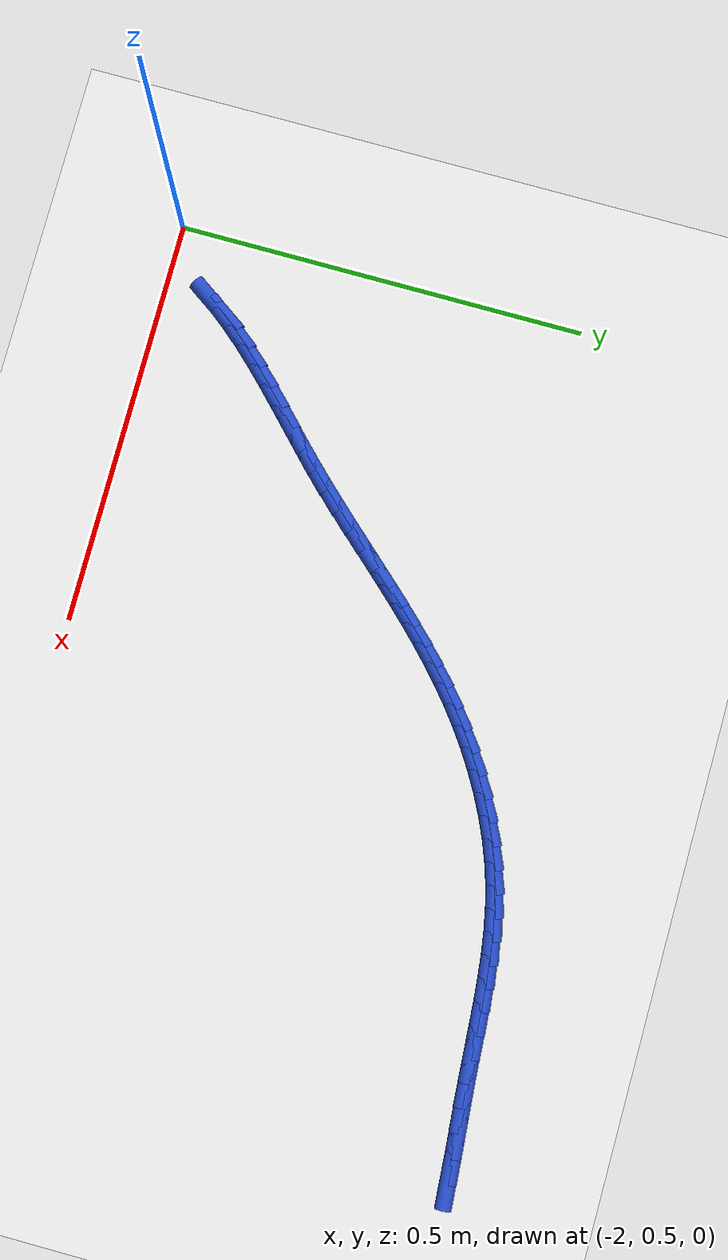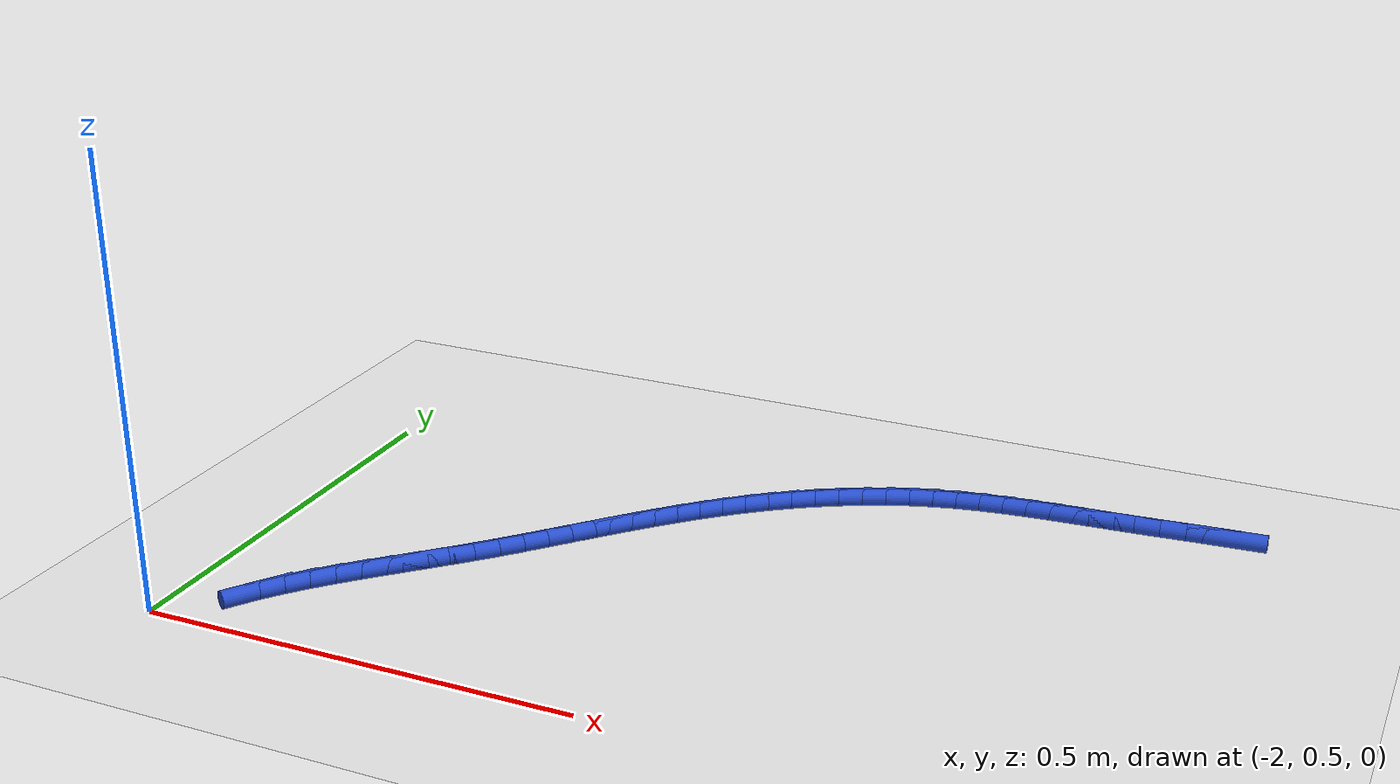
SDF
<sdf version="1.6">
 <world name="default">
  <model name="ground_plane">
   <static>1</static>
   <link name="link">
    <collision name="collision">
     <geometry><plane><normal>0 0 1</normal><size>100 100</size></plane></geometry>
     <surface><friction><ode><mu>100</mu><mu2>50</mu2></ode></friction></surface>
    </collision>
    <visual name="visual">
     <cast_shadows>0</cast_shadows>
     <geometry><plane><normal>0 0 1</normal><size>100 100</size></plane></geometry>
     <material>
      <script><uri>file://media/materials/scripts/gazebo.material</uri><name>Gazebo/WhiteGlow</name></script>
     </material>
    </visual>
   </link>
  </model>
  <model name="line">
   <link name="link_59">
    <pose>-0.9951345230414284 1.1053620882151611 0.01 0 1.57 0.06893709986470267</pose>
    <collision name="collision">
     <geometry><cylinder><radius>0.01</radius><length>0.08</length></cylinder></geometry>
    </collision>
    <visual name="visual">
     <material>
      <script><name>Gazebo/Blue</name><uri>file://media/materials/scripts/gazebo.material</uri></script>
     </material>
     <geometry><cylinder><radius>0.01</radius><length>0.08</length></cylinder></geometry>
    </visual>
   </link>
   <link name="link_60">
    <pose>-1.0244910421287046 1.1033351229777373 0.01 0 1.57 0.07926568217834067</pose>
    <collision name="collision">
     <geometry><cylinder><radius>0.01</radius><length>0.08</length></cylinder></geometry>
    </collision>
    <visual name="visual">
     <material>
      <script><name>Gazebo/Blue</name><uri>file://media/materials/scripts/gazebo.material</uri></script>
     </material>
     <geometry><cylinder><radius>0.01</radius><length>0.08</length></cylinder></geometry>
    </visual>
   </link>
   <link name="link_61">
    <pose>-1.053841853975743 1.1010037260478336 0.01 0 1.57 0.08159850793330946</pose>
    <collision name="collision">
     <geometry><cylinder><radius>0.01</radius><length>0.08</length></cylinder></geometry>
    </collision>
    <visual name="visual">
     <material>
      <script><name>Gazebo/Blue</name><uri>file://media/materials/scripts/gazebo.material</uri></script>
     </material>
     <geometry><cylinder><radius>0.01</radius><length>0.08</length></cylinder></geometry>
    </visual>
   </link>
   <link name="link_62">
    <pose>-1.0830461941509046 1.0986153923493729 0.01 0 1.57 0.07588325117777958</pose>
    <collision name="collision">
     <geometry><cylinder><radius>0.01</radius><length>0.08</length></cylinder></geometry>
    </collision>
    <visual name="visual">
     <material>
      <script><name>Gazebo/Blue</name><uri>file://media/materials/scripts/gazebo.material</uri></script>
     </material>
     <geometry><cylinder><radius>0.01</radius><length>0.08</length></cylinder></geometry>
    </visual>
   </link>
   <link name="link_63">
    <pose>-1.1119635499738292 1.0964168277786615 0.01 0 1.57 0.06673845027058287</pose>
    <collision name="collision">
     <geometry><cylinder><radius>0.01</radius><length>0.08</length></cylinder></geometry>
    </collision>
    <visual name="visual">
     <material>
      <script><name>Gazebo/Blue</name><uri>file://media/materials/scripts/gazebo.material</uri></script>
     </material>
     <geometry><cylinder><radius>0.01</radius><length>0.08</length></cylinder></geometry>
    </visual>
   </link>
   <link name="link_64">
    <pose>-1.140499738308713 1.094509534243048 0.01 0 1.57 0.06483117132982656</pose>
    <collision name="collision">
     <geometry><cylinder><radius>0.01</radius><length>0.08</length></cylinder></geometry>
    </collision>
    <visual name="visual">
     <material>
      <script><name>Gazebo/Blue</name><uri>file://media/materials/scripts/gazebo.material</uri></script>
     </material>
     <geometry><cylinder><radius>0.01</radius><length>0.08</length></cylinder></geometry>
    </visual>
   </link>
   <link name="link_65">
    <pose>-1.1686606822779055 1.0926812650874371 0.01 0 1.57 0.0718926721216693</pose>
    <collision name="collision">
     <geometry><cylinder><radius>0.01</radius><length>0.08</length></cylinder></geometry>
    </collision>
    <visual name="visual">
     <material>
      <script><name>Gazebo/Blue</name><uri>file://media/materials/scripts/gazebo.material</uri></script>
     </material>
     <geometry><cylinder><radius>0.01</radius><length>0.08</length></cylinder></geometry>
    </visual>
   </link>
   <link name="link_66">
    <pose>-1.1964653586273453 1.0906788615727943 0.01 0 1.57 0.08822787158191177</pose>
    <collision name="collision">
     <geometry><cylinder><radius>0.01</radius><length>0.08</length></cylinder></geometry>
    </collision>
    <visual name="visual">
     <material>
      <script><name>Gazebo/Blue</name><uri>file://media/materials/scripts/gazebo.material</uri></script>
     </material>
     <geometry><cylinder><radius>0.01</radius><length>0.08</length></cylinder></geometry>
    </visual>
   </link>
   <link name="link_67">
    <pose>-1.2239327441029715 1.0882491649600858 0.01 0 1.57 0.11406096073007319</pose>
    <collision name="collision">
     <geometry><cylinder><radius>0.01</radius><length>0.08</length></cylinder></geometry>
    </collision>
    <visual name="visual">
     <material>
      <script><name>Gazebo/Blue</name><uri>file://media/materials/scripts/gazebo.material</uri></script>
     </material>
     <geometry><cylinder><radius>0.01</radius><length>0.08</length></cylinder></geometry>
    </visual>
   </link>
   <link name="link_68">
    <pose>-1.251081815450724 1.0851390165102783 0.01 0 1.57 0.14948357932419815</pose>
    <collision name="collision">
     <geometry><cylinder><radius>0.01</radius><length>0.08</length></cylinder></geometry>
    </collision>
    <visual name="visual">
     <material>
      <script><name>Gazebo/Blue</name><uri>file://media/materials/scripts/gazebo.material</uri></script>
     </material>
     <geometry><cylinder><radius>0.01</radius><length>0.08</length></cylinder></geometry>
    </visual>
   </link>
   <link name="link_69">
    <pose>-1.2779315494165413 1.081095257484337 0.01 0 1.57 0.19437746728670596</pose>
    <collision name="collision">
     <geometry><cylinder><radius>0.01</radius><length>0.08</length></cylinder></geometry>
    </collision>
    <visual name="visual">
     <material>
      <script><name>Gazebo/Blue</name><uri>file://media/materials/scripts/gazebo.material</uri></script>
     </material>
     <geometry><cylinder><radius>0.01</radius><length>0.08</length></cylinder></geometry>
    </visual>
   </link>
   <link name="link_70">
    <pose>-1.3045009227463635 1.0758647291432293 0.01 0 1.57 0.2483193841789385</pose>
    <collision name="collision">
     <geometry><cylinder><radius>0.01</radius><length>0.08</length></cylinder></geometry>
    </collision>
    <visual name="visual">
     <material>
      <script><name>Gazebo/Blue</name><uri>file://media/materials/scripts/gazebo.material</uri></script>
     </material>
     <geometry><cylinder><radius>0.01</radius><length>0.08</length></cylinder></geometry>
    </visual>
   </link>
   <link name="link_71">
    <pose>-1.3308089121861293 1.0691942727479211 0.01 0 1.57 0.3087406517517289</pose>
    <collision name="collision">
     <geometry><cylinder><radius>0.01</radius><length>0.08</length></cylinder></geometry>
    </collision>
    <visual name="visual">
     <material>
      <script><name>Gazebo/Blue</name><uri>file://media/materials/scripts/gazebo.material</uri></script>
     </material>
     <geometry><cylinder><radius>0.01</radius><length>0.08</length></cylinder></geometry>
    </visual>
   </link>
   <link name="link_72">
    <pose>-1.3568584716286476 1.060886039423066 0.01 0 1.57 0.3672539704113925</pose>
    <collision name="collision">
     <geometry><cylinder><radius>0.01</radius><length>0.08</length></cylinder></geometry>
    </collision>
    <visual name="visual">
     <material>
      <script><name>Gazebo/Blue</name><uri>file://media/materials/scripts/gazebo.material</uri></script>
     </material>
     <geometry><cylinder><radius>0.01</radius><length>0.08</length></cylinder></geometry>
    </visual>
   </link>
   <link name="link_73">
    <pose>-1.38258060566893 1.0509905446652081 0.01 0 1.57 0.42203436986433046</pose>
    <collision name="collision">
     <geometry><cylinder><radius>0.01</radius><length>0.08</length></cylinder></geometry>
    </collision>
    <visual name="visual">
     <material>
      <script><name>Gazebo/Blue</name><uri>file://media/materials/scripts/gazebo.material</uri></script>
     </material>
     <geometry><cylinder><radius>0.01</radius><length>0.08</length></cylinder></geometry>
    </visual>
   </link>
   <link name="link_74">
    <pose>-1.4078861320751148 1.0396279876054928 0.01 0 1.57 0.4735832295844764</pose>
    <collision name="collision">
     <geometry><cylinder><radius>0.01</radius><length>0.08</length></cylinder></geometry>
    </collision>
    <visual name="visual">
     <material>
      <script><name>Gazebo/Blue</name><uri>file://media/materials/scripts/gazebo.material</uri></script>
     </material>
     <geometry><cylinder><radius>0.01</radius><length>0.08</length></cylinder></geometry>
    </visual>
   </link>
   <link name="link_75">
    <pose>-1.4326858675852274 1.0269185709309387 0.01 0 1.57 0.5224033971049021</pose>
    <collision name="collision">
     <geometry><cylinder><radius>0.01</radius><length>0.08</length></cylinder></geometry>
    </collision>
    <visual name="visual">
     <material>
      <script><name>Gazebo/Blue</name><uri>file://media/materials/scripts/gazebo.material</uri></script>
     </material>
     <geometry><cylinder><radius>0.01</radius><length>0.08</length></cylinder></geometry>
    </visual>
   </link>
   <link name="link_76">
    <pose>-1.4568906289372938 1.0129824973285653 0.01 0 1.57 0.5689916413756373</pose>
    <collision name="collision">
     <geometry><cylinder><radius>0.01</radius><length>0.08</length></cylinder></geometry>
    </collision>
    <visual name="visual">
     <material>
      <script><name>Gazebo/Blue</name><uri>file://media/materials/scripts/gazebo.material</uri></script>
     </material>
     <geometry><cylinder><radius>0.01</radius><length>0.08</length></cylinder></geometry>
    </visual>
   </link>
   <link name="link_77">
    <pose>-1.4804112328693413 0.9979399694853917 0.01 0 1.57 0.6138376171303522</pose>
    <collision name="collision">
     <geometry><cylinder><radius>0.01</radius><length>0.08</length></cylinder></geometry>
    </collision>
    <visual name="visual">
     <material>
      <script><name>Gazebo/Blue</name><uri>file://media/materials/scripts/gazebo.material</uri></script>
     </material>
     <geometry><cylinder><radius>0.01</radius><length>0.08</length></cylinder></geometry>
    </visual>
   </link>
   <link name="link_78">
    <pose>-1.503158496119396 0.9819111900884373 0.01 0 1.57 0.6571451216572342</pose>
    <collision name="collision">
     <geometry><cylinder><radius>0.01</radius><length>0.08</length></cylinder></geometry>
    </collision>
    <visual name="visual">
     <material>
      <script><name>Gazebo/Blue</name><uri>file://media/materials/scripts/gazebo.material</uri></script>
     </material>
     <geometry><cylinder><radius>0.01</radius><length>0.08</length></cylinder></geometry>
    </visual>
   </link>
   <link name="link_79">
    <pose>-1.5250587650274183 0.9650142449809376 0.01 0 1.57 0.6968904264008976</pose>
    <collision name="collision">
     <geometry><cylinder><radius>0.01</radius><length>0.08</length></cylinder></geometry>
    </collision>
    <visual name="visual">
     <material>
      <script><name>Gazebo/Blue</name><uri>file://media/materials/scripts/gazebo.material</uri></script>
     </material>
     <geometry><cylinder><radius>0.01</radius><length>0.08</length></cylinder></geometry>
    </visual>
   </link>
   <link name="link_80">
    <pose>-1.5461630706263914 0.9473502242055551 0.01 0 1.57 0.7317518147637724</pose>
    <collision name="collision">
     <geometry><cylinder><radius>0.01</radius><length>0.08</length></cylinder></geometry>
    </collision>
    <visual name="visual">
     <material>
      <script><name>Gazebo/Blue</name><uri>file://media/materials/scripts/gazebo.material</uri></script>
     </material>
     <geometry><cylinder><radius>0.01</radius><length>0.08</length></cylinder></geometry>
    </visual>
   </link>
   <link name="link_81">
    <pose>-1.566582456503655 0.929012037479199 0.01 0 1.57 0.7615051513535609</pose>
    <collision name="collision">
     <geometry><cylinder><radius>0.01</radius><length>0.08</length></cylinder></geometry>
    </collision>
    <visual name="visual">
     <material>
      <script><name>Gazebo/Blue</name><uri>file://media/materials/scripts/gazebo.material</uri></script>
     </material>
     <geometry><cylinder><radius>0.01</radius><length>0.08</length></cylinder></geometry>
    </visual>
   </link>
   <link name="link_82">
    <pose>-1.5864283499607457 0.9100925422146036 0.01 0 1.57 0.7860198943883514</pose>
    <collision name="collision">
     <geometry><cylinder><radius>0.01</radius><length>0.08</length></cylinder></geometry>
    </collision>
    <visual name="visual">
     <material>
      <script><name>Gazebo/Blue</name><uri>file://media/materials/scripts/gazebo.material</uri></script>
     </material>
     <geometry><cylinder><radius>0.01</radius><length>0.08</length></cylinder></geometry>
    </visual>
   </link>
   <link name="link_83">
    <pose>-1.6058121782991996 0.8906845958245011 0.01 0 1.57 0.805231155553182</pose>
    <collision name="collision">
     <geometry><cylinder><radius>0.01</radius><length>0.08</length></cylinder></geometry>
    </collision>
    <visual name="visual">
     <material>
      <script><name>Gazebo/Blue</name><uri>file://media/materials/scripts/gazebo.material</uri></script>
     </material>
     <geometry><cylinder><radius>0.01</radius><length>0.08</length></cylinder></geometry>
    </visual>
   </link>
   <link name="link_84">
    <pose>-1.6248453688205537 0.8708810557216262 0.01 0 1.57 0.8191202783906381</pose>
    <collision name="collision">
     <geometry><cylinder><radius>0.01</radius><length>0.08</length></cylinder></geometry>
    </collision>
    <visual name="visual">
     <material>
      <script><name>Gazebo/Blue</name><uri>file://media/materials/scripts/gazebo.material</uri></script>
     </material>
     <geometry><cylinder><radius>0.01</radius><length>0.08</length></cylinder></geometry>
    </visual>
   </link>
   <link name="link_85">
    <pose>-1.6436393488263463 0.8507747793187116 0.01 0 1.57 0.8276986964187525</pose>
    <collision name="collision">
     <geometry><cylinder><radius>0.01</radius><length>0.08</length></cylinder></geometry>
    </collision>
    <visual name="visual">
     <material>
      <script><name>Gazebo/Blue</name><uri>file://media/materials/scripts/gazebo.material</uri></script>
     </material>
     <geometry><cylinder><radius>0.01</radius><length>0.08</length></cylinder></geometry>
    </visual>
   </link>
   <link name="link_86">
    <pose>-1.6623055456181122 0.8304586240284919 0.01 0 1.57 0.8309959671210732</pose>
    <collision name="collision">
     <geometry><cylinder><radius>0.01</radius><length>0.08</length></cylinder></geometry>
    </collision>
    <visual name="visual">
     <material>
      <script><name>Gazebo/Blue</name><uri>file://media/materials/scripts/gazebo.material</uri></script>
     </material>
     <geometry><cylinder><radius>0.01</radius><length>0.08</length></cylinder></geometry>
    </visual>
   </link>
   <link name="link_87">
    <pose>-1.6809553864973892 0.8100254472637002 0.01 0 1.57 0.8290523032095672</pose>
    <collision name="collision">
     <geometry><cylinder><radius>0.01</radius><length>0.08</length></cylinder></geometry>
    </collision>
    <visual name="visual">
     <material>
      <script><name>Gazebo/Blue</name><uri>file://media/materials/scripts/gazebo.material</uri></script>
     </material>
     <geometry><cylinder><radius>0.01</radius><length>0.08</length></cylinder></geometry>
    </visual>
   </link>
   <link name="link_88">
    <pose>-1.6997002987657146 0.7895681064370703 0.01 0 1.57 0.8219155874910257</pose>
    <collision name="collision">
     <geometry><cylinder><radius>0.01</radius><length>0.08</length></cylinder></geometry>
    </collision>
    <visual name="visual">
     <material>
      <script><name>Gazebo/Blue</name><uri>file://media/materials/scripts/gazebo.material</uri></script>
     </material>
     <geometry><cylinder><radius>0.01</radius><length>0.08</length></cylinder></geometry>
    </visual>
   </link>
   <link name="link_89">
    <pose>-1.718651709724625 0.7691794589613357 0.01 0 1.57 0.8096426839496936</pose>
    <collision name="collision">
     <geometry><cylinder><radius>0.01</radius><length>0.08</length></cylinder></geometry>
    </collision>
    <visual name="visual">
     <material>
      <script><name>Gazebo/Blue</name><uri>file://media/materials/scripts/gazebo.material</uri></script>
     </material>
     <geometry><cylinder><radius>0.01</radius><length>0.08</length></cylinder></geometry>
    </visual>
   </link>
   <link name="link_90">
    <pose>-1.7379210466756567 0.7489523622492301 0.01 0 1.57 0.7923131474276485</pose>
    <collision name="collision">
     <geometry><cylinder><radius>0.01</radius><length>0.08</length></cylinder></geometry>
    </collision>
    <visual name="visual">
     <material>
      <script><name>Gazebo/Blue</name><uri>file://media/materials/scripts/gazebo.material</uri></script>
     </material>
     <geometry><cylinder><radius>0.01</radius><length>0.08</length></cylinder></geometry>
    </visual>
   </link>
   <link name="link_91">
    <pose>-1.7576195366123262 0.7289795414598592 0.01 0 1.57 0.7737002986561314</pose>
    <collision name="collision">
     <geometry><cylinder><radius>0.01</radius><length>0.08</length></cylinder></geometry>
    </collision>
    <visual name="visual">
     <material>
      <script><name>Gazebo/Blue</name><uri>file://media/materials/scripts/gazebo.material</uri></script>
     </material>
     <geometry><cylinder><radius>0.01</radius><length>0.08</length></cylinder></geometry>
    </visual>
   </link>
   <link name="link_92">
    <pose>-1.7777698360719294 0.7092952429948615 0.01 0 1.57 0.7632057205534214</pose>
    <collision name="collision">
     <geometry><cylinder><radius>0.01</radius><length>0.08</length></cylinder></geometry>
    </collision>
    <visual name="visual">
     <material>
      <script><name>Gazebo/Blue</name><uri>file://media/materials/scripts/gazebo.material</uri></script>
     </material>
     <geometry><cylinder><radius>0.01</radius><length>0.08</length></cylinder></geometry>
    </visual>
   </link>
   <link name="link_93">
    <pose>-1.798167280129087 0.689783623968202 0.01 0 1.57 0.7621982476762261</pose>
    <collision name="collision">
     <geometry><cylinder><radius>0.01</radius><length>0.08</length></cylinder></geometry>
    </collision>
    <visual name="visual">
     <material>
      <script><name>Gazebo/Blue</name><uri>file://media/materials/scripts/gazebo.material</uri></script>
     </material>
     <geometry><cylinder><radius>0.01</radius><length>0.08</length></cylinder></geometry>
    </visual>
   </link>
   <link name="link_94">
    <pose>-1.8185712425278597 0.670305097979162 0.01 0 1.57 0.7706881947209409</pose>
    <collision name="collision">
     <geometry><cylinder><radius>0.01</radius><length>0.08</length></cylinder></geometry>
    </collision>
    <visual name="visual">
     <material>
      <script><name>Gazebo/Blue</name><uri>file://media/materials/scripts/gazebo.material</uri></script>
     </material>
     <geometry><cylinder><radius>0.01</radius><length>0.08</length></cylinder></geometry>
    </visual>
   </link>
   <link name="link_95">
    <pose>-1.8387410970123113 0.6507200786270221 0.01 0 1.57 0.7888383675781363</pose>
    <collision name="collision">
     <geometry><cylinder><radius>0.01</radius><length>0.08</length></cylinder></geometry>
    </collision>
    <visual name="visual">
     <material>
      <script><name>Gazebo/Blue</name><uri>file://media/materials/scripts/gazebo.material</uri></script>
     </material>
     <geometry><cylinder><radius>0.01</radius><length>0.08</length></cylinder></geometry>
    </visual>
   </link>
   <link name="link_96">
    <pose>-1.858436217326503 0.6308889795110629 0.01 0 1.57 0.8169467498425644</pose>
    <collision name="collision">
     <geometry><cylinder><radius>0.01</radius><length>0.08</length></cylinder></geometry>
    </collision>
    <visual name="visual">
     <material>
      <script><name>Gazebo/Blue</name><uri>file://media/materials/scripts/gazebo.material</uri></script>
     </material>
     <geometry><cylinder><radius>0.01</radius><length>0.08</length></cylinder></geometry>
    </visual>
   </link>
   <link name="link_97">
    <pose>-1.877415977214497 0.6106722142305656 0.01 0 1.57 0.8554032547266549</pose>
    <collision name="collision">
     <geometry><cylinder><radius>0.01</radius><length>0.08</length></cylinder></geometry>
    </collision>
    <visual name="visual">
     <material>
      <script><name>Gazebo/Blue</name><uri>file://media/materials/scripts/gazebo.material</uri></script>
     </material>
     <geometry><cylinder><radius>0.01</radius><length>0.08</length></cylinder></geometry>
    </visual>
   </link>
   <link name="link_98">
    <pose>-1.8954397504203562 0.5899301963848109 0.01 0 1.57 0.9046108766442557</pose>
    <collision name="collision">
     <geometry><cylinder><radius>0.01</radius><length>0.08</length></cylinder></geometry>
    </collision>
    <visual name="visual">
     <material>
      <script><name>Gazebo/Blue</name><uri>file://media/materials/scripts/gazebo.material</uri></script>
     </material>
     <geometry><cylinder><radius>0.01</radius><length>0.08</length></cylinder></geometry>
    </visual>
   </link>
   <link name="link_99">
    <pose>-1.9122669106881418 0.5685233395730793 0.01 0 1.57 0.9648597801944171</pose>
    <collision name="collision">
     <geometry><cylinder><radius>0.01</radius><length>0.08</length></cylinder></geometry>
    </collision>
    <visual name="visual">
     <material>
      <script><name>Gazebo/Blue</name><uri>file://media/materials/scripts/gazebo.material</uri></script>
     </material>
     <geometry><cylinder><radius>0.01</radius><length>0.08</length></cylinder></geometry>
    </visual>
   </link>
  </model>
 </world>
</sdf>
